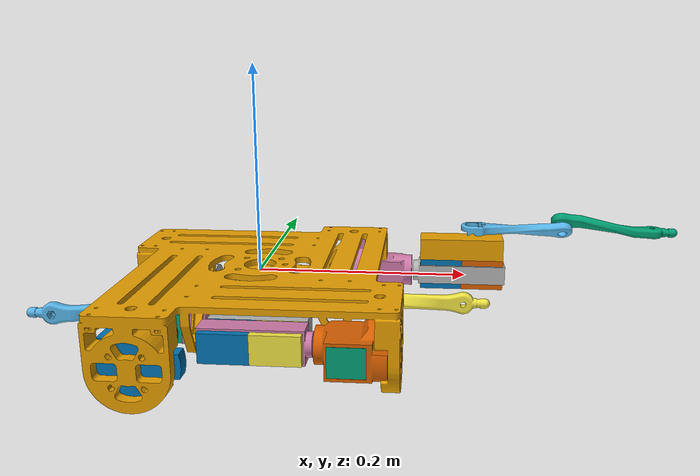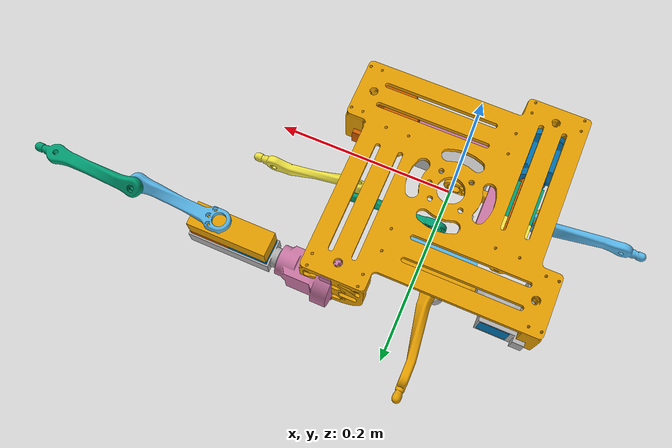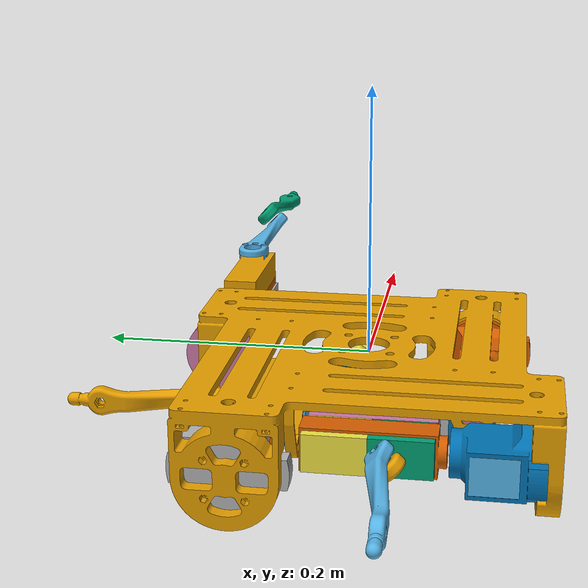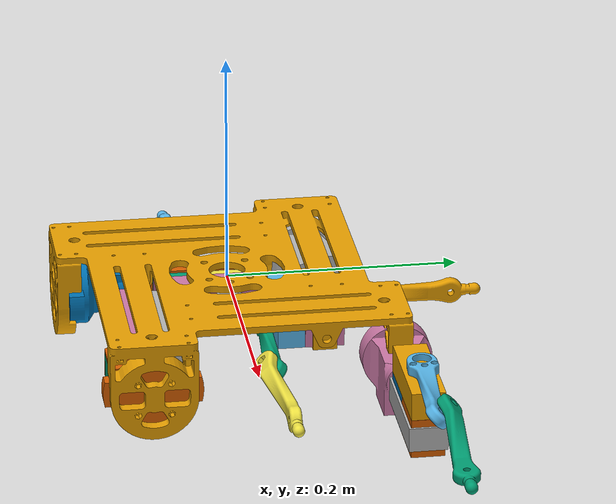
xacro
<?xml version="1.0"?>
<robot xmlns:xacro="http://www.ros.org/wiki/xacro">
    <xacro:property name="link_type" value="overconstrained"/>

    <xacro:include filename="${link_type}.urdf.xacro"/>

    <link name="horizontal_base">
        <visual>
            <origin xyz="0 0 0" rpy="0 0 0"/>
            <geometry>
                <mesh filename="${root_folder}/mesh/frames/gripper_horizontal.obj" scale="${scale}"/>
            </geometry>
        </visual>

        <collision>
            <origin xyz="0 0 0" rpy="0 0 0"/>
            <geometry>
                <mesh filename="${root_folder}/mesh/frames/gripper_horizontal.obj" scale="${scale}"/>
            </geometry>
        </collision>
    </link>

    <!--Four modules-->
    <xacro:module module_prefix="0" parent_link="horizontal_base">
        <origin xyz="-0.08 -0.1329 -0.041" rpy="${PI/-2} ${PI/-2} 0"/>
    </xacro:module>

    <xacro:module module_prefix="1" parent_link="horizontal_base">
        <origin xyz="0.1329 -0.08 -0.041" rpy="0 ${PI/-2} 0"/>
    </xacro:module>

    <xacro:module module_prefix="2" parent_link="horizontal_base">
        <origin xyz="0.08 0.1329 -0.041" rpy="${PI/2} 0 ${PI/2}"/>
    </xacro:module>

    <xacro:module module_prefix="3" parent_link="horizontal_base">
        <origin xyz="-0.1329 0.08 -0.041" rpy="${PI} ${PI/-2} 0"/>
    </xacro:module>

</robot>

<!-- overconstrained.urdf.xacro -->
<robot xmlns:xacro="http://www.ros.org/wiki/xacro">
    <xacro:property name="root_folder" value="."/>
    <xacro:property name="scale" value="0.001 0.001 0.001"/>
    <xacro:property name="PI" value="3.14159265"/>
    <xacro:property name="link_type" value="overconstrained"/>

    <!--Inertial Information for each part-->
    <xacro:macro name="xm430_inertia">
        <inertial>
            <origin xyz="-4.0773796e-3 -1.5304911e-2 -1.6871895e-2" rpy="0 0 0"/>
            <mass value="0.082"/>
            <inertia ixx="2.3729564e-5" ixy="-1.3079758e-7"
                    ixz="-8.1403365e-8" iyy="1.3112295e-5"
                    iyz="-1.9659314e-6" izz="2.0942871e-5"/>
        </inertial>
    </xacro:macro>

    <xacro:macro name="base_motor_frame_inertia">
        <inertial>
            <origin xyz="6.48e-08 -0.0015864406 0.0250889877" rpy="0 0 0"/>
            <mass value="0.0768049156"/>
            <inertia ixx="5.65659e-05" iyy="5.30145e-05"
                izz="3.40217e-05" ixy="-0.0"
                iyz="1.1663e-06" ixz="1e-10"/>
        </inertial>
    </xacro:macro>

    <xacro:macro name="dual_servo_shell_inertia">
        <inertial>
            <origin xyz="0.0005322566 -0.0003161331 0.0506920676" rpy="0 0 0"/>
            <mass value="0.0258069457"/>
            <inertia ixx="4.11451e-05" iyy="4.42386e-05"
                izz="4.8477e-06" ixy="7.82e-08"
                iyz="2.774e-07" ixz="-7.721e-07"/>
        </inertial>
    </xacro:macro>

    <xacro:macro name="dual_servo_transmission_inertia">
        <inertial>
            <origin xyz="-1.41e-08 0.0095354556 0.0141401617" rpy="0 0 0"/>
            <mass value="0.0576887165"/>
            <inertia ixx="2.78223e-05" iyy="1.35978e-05"
                izz="2.50167e-05" ixy="5.7e-09"
                iyz="4.5419e-06" ixz="-0.0"/>
        </inertial>
    </xacro:macro>

    <xacro:macro name="finger2_inertia">
        <inertial>
            <origin xyz="0.002386501 -0.0533785592 -0.0003073645" rpy="0 0 0"/>
            <mass value="0.0217645964"/>
            <inertia ixx="3.57111e-05" iyy="1.2113e-06"
                izz="3.54138e-05" ixy="1.7199e-06"
                iyz="-4.1867e-06" ixz="1.471e-07"/>
        </inertial>
    </xacro:macro>

    <xacro:macro name="finger1_inertia">
        <inertial>
            <origin xyz="-0.0026422902 -0.067590774 -0.0033849791" rpy="0 0 0"/>
            <mass value="0.0275608119"/>
            <inertia ixx="3.84633e-05" iyy="1.4218e-06"
                izz="3.88256e-05" ixy="-1.6444e-06"
                iyz="4.345e-07" ixz="-2.013e-07"/>
        </inertial>
    </xacro:macro>

    <!--Parts-->
    <xacro:macro name="xm430" params="module_prefix motor_index">
        <link name="${module_prefix}-xm430_${motor_index}">
            <xacro:xm430_inertia/>
            <visual>
                <origin xyz="0.0 0.0 0.0" rpy="0.0 0.0 0.0"/>
                <geometry>
                    <mesh filename="${root_folder}/mesh/general/XM430-simplified.stl" scale="${scale}"/>
                </geometry>
            </visual>
            <collision>
                <origin xyz="0.0 0.0 0.0" rpy="0.0 0.0 0.0"/>
                <geometry>
                    <mesh filename="${root_folder}/mesh/general/XM430-simplified.stl" scale="${scale}"/>
                </geometry>
            </collision>
        </link>
    </xacro:macro>

    <xacro:macro name="base_motor_frame" params="module_prefix">
        <link name="${module_prefix}-base_motor_frame">
            <xacro:base_motor_frame_inertia/>
            <visual>
                <origin xyz="0 0 0" rpy="0 0 0"/>
                <geometry>
                    <mesh filename="${root_folder}/mesh/general/base_motor_frame_simplified.stl" scale="${scale}"/>
                </geometry>
            </visual>
            <collision>
                <origin xyz="0 0 0" rpy="0 0 0"/>
                <geometry>
                    <mesh filename="${root_folder}/mesh/general/base_motor_frame_simplified.stl" scale="${scale}"/>
                </geometry>
            </collision>
        </link>
    </xacro:macro>

    <xacro:macro name="dual_servo_shell" params="module_prefix">
        <link name="${module_prefix}-dual_servo_shell">
            <xacro:dual_servo_shell_inertia/>
            <visual>
                <origin xyz="0.0 0.0 0.0" rpy="0.0 0.0 0.0"/>
                <geometry>
                    <mesh filename="${root_folder}/mesh/general/dual_servo_shell_simplified.stl" scale="${scale}"/>
                </geometry>
            </visual>
            <collision>
                <origin xyz="0.0 0.0 0.0" rpy="0.0 0.0 0.0"/>
                <geometry>
                    <mesh filename="${root_folder}/mesh/general/dual_servo_shell_simplified.stl" scale="${scale}"/>
                </geometry>
            </collision>
        </link>
    </xacro:macro>

    <xacro:macro name="dual_servo_transmission" params="module_prefix">
        <link name="${module_prefix}-dual_servo_transmission">
            <xacro:dual_servo_transmission_inertia/>
            <visual>
                <origin xyz="0.0 0.0 0.0" rpy="0.0 0.0 0.0"/>
                <geometry>
                    <mesh filename="${root_folder}/mesh/general/dual_servo_transmission_simplified.obj" scale="${scale}"/>
                </geometry>
            </visual>
            <collision>
                <origin xyz="0.0 0.0 0.0" rpy="0.0 0.0 0.0"/>
                <geometry>
                    <mesh filename="${root_folder}/mesh/general/dual_servo_transmission_simplified.obj" scale="${scale}"/>
                </geometry>
            </collision>
        </link>
    </xacro:macro>

    <xacro:macro name="finger2" params="module_prefix">
        <link name="${module_prefix}-finger2">
            <xacro:finger2_inertia/>
            <visual>
                <origin xyz="0.0 0.0 0.0" rpy="0.0 0.0 0.0"/>
                <geometry>
                    <mesh filename="${root_folder}/mesh/${link_type}/finger2.obj" scale="${scale}"/>
                </geometry>
            </visual>
            <collision>
                <origin xyz="0.0 0.0 0.0" rpy="0.0 0.0 0.0"/>
                <geometry>
                    <mesh filename="${root_folder}/mesh/${link_type}/finger2.obj" scale="${scale}"/>
                </geometry>
            </collision>
        </link>
    </xacro:macro>

    <xacro:macro name="finger1" params="module_prefix">
        <link name="${module_prefix}-finger1">
            <xacro:finger1_inertia/>
            <visual>
                <origin xyz="0.0 0.0 0.0" rpy="0.0 0.0 0.0"/>
                <geometry>
                    <mesh filename="${root_folder}/mesh/${link_type}/finger1.obj" scale="${scale}"/>
                </geometry>
            </visual>
            <collision>
                <origin xyz="0.0 0.0 0.0" rpy="0.0 0.0 0.0"/>
                <geometry>
                    <mesh filename="${root_folder}/mesh/${link_type}/finger1.obj" scale="${scale}"/>
                </geometry>
            </collision>
        </link>
    </xacro:macro>

    <!--Module Definition-->
    <xacro:macro name="module" params="module_prefix parent_link *origin">
        <!--Create all the parts needed to construct the module-->
        <xacro:xm430 module_prefix="${module_prefix}" motor_index="0"/>
        <xacro:xm430 module_prefix="${module_prefix}" motor_index="1"/>
        <xacro:xm430 module_prefix="${module_prefix}" motor_index="2"/>
        <xacro:base_motor_frame module_prefix="${module_prefix}"/>
        <xacro:dual_servo_shell module_prefix="${module_prefix}"/>
        <xacro:dual_servo_transmission module_prefix="${module_prefix}"/>
        <xacro:finger1 module_prefix="${module_prefix}"/>
        <xacro:finger2 module_prefix="${module_prefix}"/>

        <!--Create joints to connect the parts-->
        <!--Fix the module to module parent link-->
        <joint name="${module_prefix}-module_to_parent" type="fixed">
            <parent link="${parent_link}"/>
            <child link="${module_prefix}-base_motor_frame"/>
            <xacro:insert_block name="origin"/>
        </joint>
        <!--Fix the parts which are not supposed to move-->
        <joint name="${module_prefix}-fix_xm430_0" type="fixed">
            <parent link="${module_prefix}-base_motor_frame"/>
            <child link="${module_prefix}-xm430_0"/>
            <origin xyz="0 0 0.054" rpy="0 0 0"/>
        </joint>

        <joint name="${module_prefix}-fix_xm430_1" type="fixed">
            <parent link="${module_prefix}-dual_servo_shell"/>
            <child link="${module_prefix}-xm430_1"/>
            <origin xyz="0 0.019 0.0334" rpy="${-1*PI/2.0} 0 0"/>
        </joint>

        <joint name="${module_prefix}-fix_xm430_2" type="fixed">
            <parent link="${module_prefix}-xm430_1"/>
            <child link="${module_prefix}-xm430_2"/>
            <origin xyz="0 -0.0465 0" rpy="0 0 0"/>
        </joint>

        <joint name="${module_prefix}-fix_transmission" type="fixed">
            <parent link="${module_prefix}-xm430_2"/>
            <child link="${module_prefix}-dual_servo_transmission"/>
            <origin xyz="0 0 0" rpy="0 0 0"/>
        </joint>

        <!--DoFs, joints corresponding to the degrees of actuation-->
        <joint name="${module_prefix}-dof1" type="revolute">
            <parent link="${module_prefix}-xm430_0"/>
            <child link="${module_prefix}-dual_servo_shell"/>
            <axis xyz="0 0 -1"/>
            <limit effort="1000" lower="${-1*PI}" upper="${PI}" velocity="1000"/>
            <origin xyz="0 0 0" rpy="0 0 0"/>
        </joint>

        <joint name="${module_prefix}-dof2" type="revolute">
            <parent link="${module_prefix}-xm430_2"/>
            <child link="${module_prefix}-finger1"/>
            <axis xyz="0 0 -1"/>
            <limit effort="1000" lower="${-1*PI/2}" upper="${PI/2}" velocity="1000"/>
            <origin xyz="0 0 0.0368" rpy="0 0 0"/>
        </joint>

        <joint name="${module_prefix}-dof3" type="revolute">
            <parent link="${module_prefix}-finger1"/>
            <child link="${module_prefix}-finger2"/>
            <axis xyz="0 0 1"/>
            <limit effort="1000" lower="${-3*PI/4}" upper="${3*PI/4}" velocity="1000"/>
            <origin xyz="0.0014142 -0.1 0.0014142" rpy="0 ${PI/4.0} 0"/>
        </joint>

        <!--frames that may be helpful-->
        <link name="${module_prefix}-fingertip_frame">
            <geometry>
                <origin xyz="0 0 0" rpy="0 0 0"/>
            </geometry>
        </link>

        <joint name="${module_prefix}-fingertip_frame_fix" type="fixed">
            <parent link="${module_prefix}-finger2"/>
            <child link="${module_prefix}-fingertip_frame"/>
            <origin xyz="0.004243 -0.127 -0.005243" rpy="0 0 0"/>
        </joint>

    </xacro:macro>

</robot>
